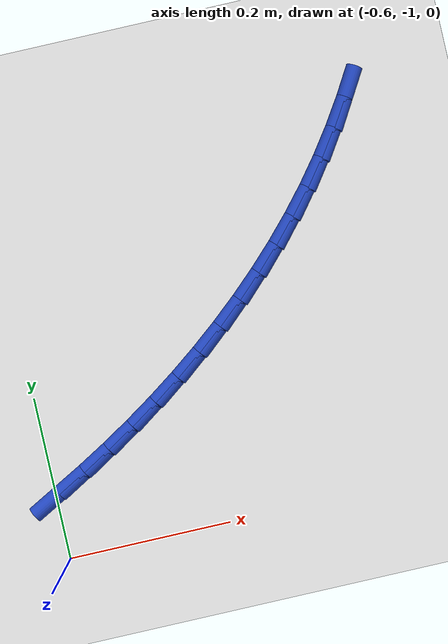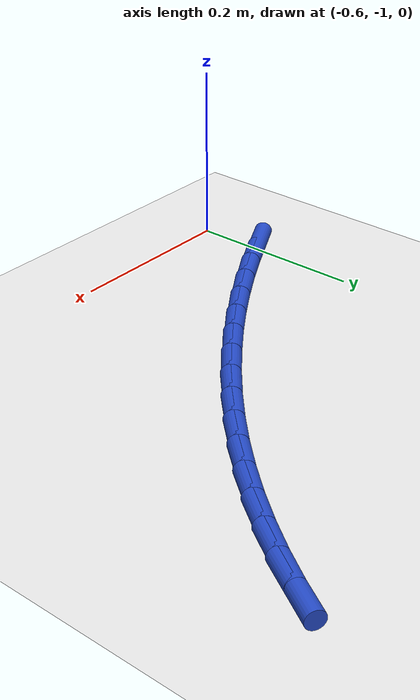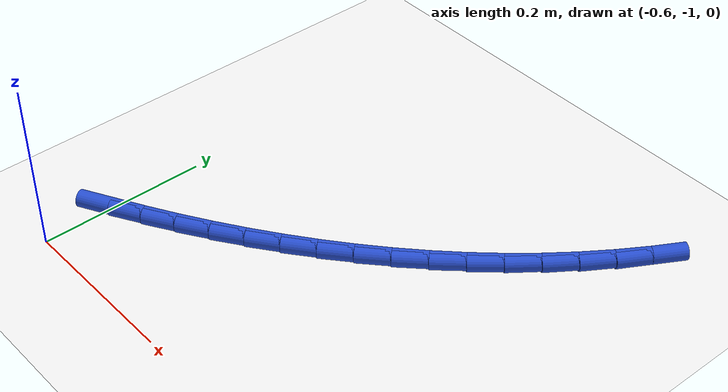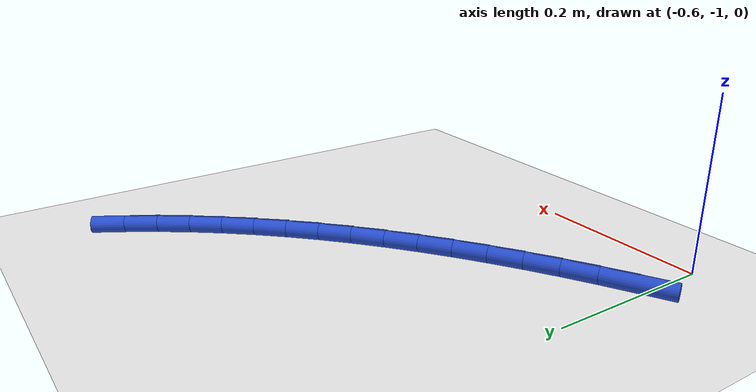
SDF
<sdf version="1.6">
 <world name="default">
  <model name="ground_plane">
   <static>1</static>
   <link name="link">
    <collision name="collision">
     <geometry><plane><normal>0 0 1</normal><size>100 100</size></plane></geometry>
     <surface><friction><ode><mu>100</mu><mu2>50</mu2></ode></friction></surface>
    </collision>
    <visual name="visual">
     <cast_shadows>0</cast_shadows>
     <geometry><plane><normal>0 0 1</normal><size>100 100</size></plane></geometry>
     <material>
      <script><uri>file://media/materials/scripts/gazebo.material</uri><name>Gazebo/WhiteGlow</name></script>
     </material>
    </visual>
   </link>
  </model>
  <model name="line">
   <link name="link_161">
    <pose>-0.5935837848620509 -0.9181715866754535 0.01 0 1.57 0.49382483077219913</pose>
    <collision name="collision">
     <geometry><cylinder><radius>0.01</radius><length>0.08</length></cylinder></geometry>
    </collision>
    <visual name="visual">
     <material>
      <script><name>Gazebo/Blue</name><uri>file://media/materials/scripts/gazebo.material</uri></script>
     </material>
     <geometry><cylinder><radius>0.01</radius><length>0.08</length></cylinder></geometry>
    </visual>
   </link>
   <link name="link_162">
    <pose>-0.5583208533540645 -0.8991891549741912 0.01 0 1.57 0.5209557279689856</pose>
    <collision name="collision">
     <geometry><cylinder><radius>0.01</radius><length>0.08</length></cylinder></geometry>
    </collision>
    <visual name="visual">
     <material>
      <script><name>Gazebo/Blue</name><uri>file://media/materials/scripts/gazebo.material</uri></script>
     </material>
     <geometry><cylinder><radius>0.01</radius><length>0.08</length></cylinder></geometry>
    </visual>
   </link>
   <link name="link_163">
    <pose>-0.5235043500472706 -0.879210346327526 0.01 0 1.57 0.5491118606913695</pose>
    <collision name="collision">
     <geometry><cylinder><radius>0.01</radius><length>0.08</length></cylinder></geometry>
    </collision>
    <visual name="visual">
     <material>
      <script><name>Gazebo/Blue</name><uri>file://media/materials/scripts/gazebo.material</uri></script>
     </material>
     <geometry><cylinder><radius>0.01</radius><length>0.08</length></cylinder></geometry>
    </visual>
   </link>
   <link name="link_164">
    <pose>-0.48921973780852357 -0.8582321444612715 0.01 0 1.57 0.5783957403777451</pose>
    <collision name="collision">
     <geometry><cylinder><radius>0.01</radius><length>0.08</length></cylinder></geometry>
    </collision>
    <visual name="visual">
     <material>
      <script><name>Gazebo/Blue</name><uri>file://media/materials/scripts/gazebo.material</uri></script>
     </material>
     <geometry><cylinder><radius>0.01</radius><length>0.08</length></cylinder></geometry>
    </visual>
   </link>
   <link name="link_165">
    <pose>-0.45555247950467764 -0.8362515331012407 0.01 0 1.57 0.6089101978142006</pose>
    <collision name="collision">
     <geometry><cylinder><radius>0.01</radius><length>0.08</length></cylinder></geometry>
    </collision>
    <visual name="visual">
     <material>
      <script><name>Gazebo/Blue</name><uri>file://media/materials/scripts/gazebo.material</uri></script>
     </material>
     <geometry><cylinder><radius>0.01</radius><length>0.08</length></cylinder></geometry>
    </visual>
   </link>
   <link name="link_166">
    <pose>-0.42258803800258776 -0.8132654959732476 0.01 0 1.57 0.6407577100555993</pose>
    <collision name="collision">
     <geometry><cylinder><radius>0.01</radius><length>0.08</length></cylinder></geometry>
    </collision>
    <visual name="visual">
     <material>
      <script><name>Gazebo/Blue</name><uri>file://media/materials/scripts/gazebo.material</uri></script>
     </material>
     <geometry><cylinder><radius>0.01</radius><length>0.08</length></cylinder></geometry>
    </visual>
   </link>
   <link name="link_167">
    <pose>-0.39041187616910655 -0.7892710168031037 0.01 0 1.57 0.6740393259284647</pose>
    <collision name="collision">
     <geometry><cylinder><radius>0.01</radius><length>0.08</length></cylinder></geometry>
    </collision>
    <visual name="visual">
     <material>
      <script><name>Gazebo/Blue</name><uri>file://media/materials/scripts/gazebo.material</uri></script>
     </material>
     <geometry><cylinder><radius>0.01</radius><length>0.08</length></cylinder></geometry>
    </visual>
   </link>
   <link name="link_168">
    <pose>-0.3591094568710888 -0.7642650793166231 0.01 0 1.57 0.7088531255847309</pose>
    <collision name="collision">
     <geometry><cylinder><radius>0.01</radius><length>0.08</length></cylinder></geometry>
    </collision>
    <visual name="visual">
     <material>
      <script><name>Gazebo/Blue</name><uri>file://media/materials/scripts/gazebo.material</uri></script>
     </material>
     <geometry><cylinder><radius>0.01</radius><length>0.08</length></cylinder></geometry>
    </visual>
   </link>
   <link name="link_169">
    <pose>-0.32876624297538865 -0.7382446672396186 0.01 0 1.57 0.7452921479020458</pose>
    <collision name="collision">
     <geometry><cylinder><radius>0.01</radius><length>0.08</length></cylinder></geometry>
    </collision>
    <visual name="visual">
     <material>
      <script><name>Gazebo/Blue</name><uri>file://media/materials/scripts/gazebo.material</uri></script>
     </material>
     <geometry><cylinder><radius>0.01</radius><length>0.08</length></cylinder></geometry>
    </visual>
   </link>
   <link name="link_170">
    <pose>-0.29946769734886036 -0.7112067642979037 0.01 0 1.57 0.7834417258718354</pose>
    <collision name="collision">
     <geometry><cylinder><radius>0.01</radius><length>0.08</length></cylinder></geometry>
    </collision>
    <visual name="visual">
     <material>
      <script><name>Gazebo/Blue</name><uri>file://media/materials/scripts/gazebo.material</uri></script>
     </material>
     <geometry><cylinder><radius>0.01</radius><length>0.08</length></cylinder></geometry>
    </visual>
   </link>
   <link name="link_171">
    <pose>-0.271299282858358 -0.6831483542172911 0.01 0 1.57 0.8233761882536889</pose>
    <collision name="collision">
     <geometry><cylinder><radius>0.01</radius><length>0.08</length></cylinder></geometry>
    </collision>
    <visual name="visual">
     <material>
      <script><name>Gazebo/Blue</name><uri>file://media/materials/scripts/gazebo.material</uri></script>
     </material>
     <geometry><cylinder><radius>0.01</radius><length>0.08</length></cylinder></geometry>
    </visual>
   </link>
   <link name="link_172">
    <pose>-0.24434646237073634 -0.6540664207235948 0.01 0 1.57 0.8651549200097206</pose>
    <collision name="collision">
     <geometry><cylinder><radius>0.01</radius><length>0.08</length></cylinder></geometry>
    </collision>
    <visual name="visual">
     <material>
      <script><name>Gazebo/Blue</name><uri>file://media/materials/scripts/gazebo.material</uri></script>
     </material>
     <geometry><cylinder><radius>0.01</radius><length>0.08</length></cylinder></geometry>
    </visual>
   </link>
   <link name="link_173">
    <pose>-0.21869469875284836 -0.6239579475426267 0.01 0 1.57 0.9086722620006162</pose>
    <collision name="collision">
     <geometry><cylinder><radius>0.01</radius><length>0.08</length></cylinder></geometry>
    </collision>
    <visual name="visual">
     <material>
      <script><name>Gazebo/Blue</name><uri>file://media/materials/scripts/gazebo.material</uri></script>
     </material>
     <geometry><cylinder><radius>0.01</radius><length>0.08</length></cylinder></geometry>
    </visual>
   </link>
   <link name="link_174">
    <pose>-0.19442422612491586 -0.5928225576249051 0.01 0 1.57 0.9523323922284805</pose>
    <collision name="collision">
     <geometry><cylinder><radius>0.01</radius><length>0.08</length></cylinder></geometry>
    </collision>
    <visual name="visual">
     <material>
      <script><name>Gazebo/Blue</name><uri>file://media/materials/scripts/gazebo.material</uri></script>
     </material>
     <geometry><cylinder><radius>0.01</radius><length>0.08</length></cylinder></geometry>
    </visual>
   </link>
   <link name="link_175">
    <pose>-0.17155805272989724 -0.560688758844933 0.01 0 1.57 0.9950941022472257</pose>
    <collision name="collision">
     <geometry><cylinder><radius>0.01</radius><length>0.08</length></cylinder></geometry>
    </collision>
    <visual name="visual">
     <material>
      <script><name>Gazebo/Blue</name><uri>file://media/materials/scripts/gazebo.material</uri></script>
     </material>
     <geometry><cylinder><radius>0.01</radius><length>0.08</length></cylinder></geometry>
    </visual>
   </link>
   <link name="link_176">
    <pose>-0.15008388915614393 -0.5276028756685684 0.01 0 1.57 1.0368887111825482</pose>
    <collision name="collision">
     <geometry><cylinder><radius>0.01</radius><length>0.08</length></cylinder></geometry>
    </collision>
    <visual name="visual">
     <material>
      <script><name>Gazebo/Blue</name><uri>file://media/materials/scripts/gazebo.material</uri></script>
     </material>
     <geometry><cylinder><radius>0.01</radius><length>0.08</length></cylinder></geometry>
    </visual>
   </link>
  </model>
 </world>
</sdf>
